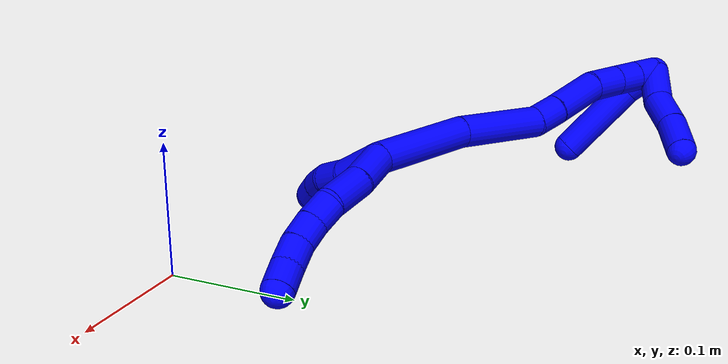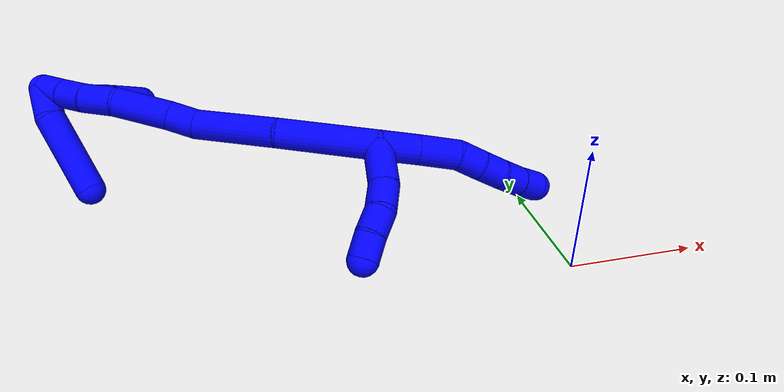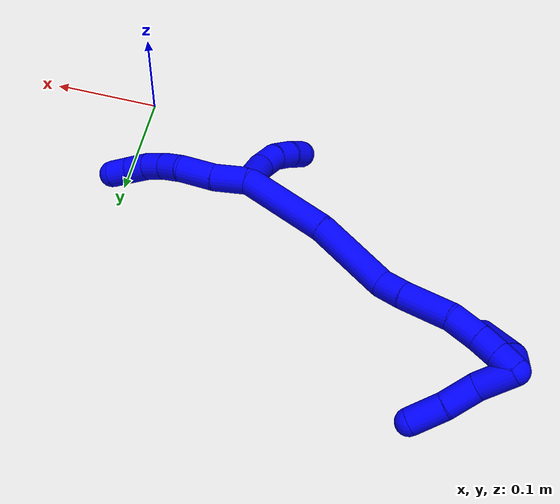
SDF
<sdf version="1.7">
 <world name="default">
  <model name="1">
   <static>0</static>
   <link name="1">
    <collision name="collision-cylinder-e_1_2_8">
     <pose>0.001054 0.001989 -0.016527 -3.02183 0.063254 -0.971163</pose>
     <geometry><cylinder><radius>0.0125</radius><length>0.033359</length></cylinder></geometry>
     <surface>
      <friction><ode><mu>1.16</mu><mu2>1.16</mu2><slip1>0</slip1><slip2>0</slip2></ode></friction>
      <contact><ode><kp>1e+06</kp><kd>1</kd><max_vel>0</max_vel><min_depth>0.001</min_depth></ode></contact>
     </surface>
    </collision>
    <visual name="visual-cylinder-e_1_2_8">
     <pose>0.001054 0.001989 -0.016527 -3.02183 0.063254 -0.971163</pose>
     <geometry><cylinder><radius>0.0125</radius><length>0.033359</length></cylinder></geometry>
     <material><ambient>0 0 1 1</ambient></material>
    </visual>
    <collision name="collision-cylinder-e_2_8_9">
     <pose>0.004544 0.003761 -0.05013 3.12891 0.141656 2.96332</pose>
     <geometry><cylinder><radius>0.0125</radius><length>0.034501</length></cylinder></geometry>
     <surface>
      <friction><ode><mu>1.16</mu><mu2>1.16</mu2><slip1>0</slip1><slip2>0</slip2></ode></friction>
      <contact><ode><kp>1e+06</kp><kd>1</kd><max_vel>0</max_vel><min_depth>0.001</min_depth></ode></contact>
     </surface>
    </collision>
    <visual name="visual-cylinder-e_2_8_9">
     <pose>0.004544 0.003761 -0.05013 3.12891 0.141656 2.96332</pose>
     <geometry><cylinder><radius>0.0125</radius><length>0.034501</length></cylinder></geometry>
     <material><ambient>0 0 1 1</ambient></material>
    </visual>
    <collision name="collision-cylinder-e_3_9_10">
     <pose>0.005627 0.002219 -0.077456 3.01298 -0.130153 -1.58273</pose>
     <geometry><cylinder><radius>0.0125</radius><length>0.020846</length></cylinder></geometry>
     <surface>
      <friction><ode><mu>1.16</mu><mu2>1.16</mu2><slip1>0</slip1><slip2>0</slip2></ode></friction>
      <contact><ode><kp>1e+06</kp><kd>1</kd><max_vel>0</max_vel><min_depth>0.001</min_depth></ode></contact>
     </surface>
    </collision>
    <visual name="visual-cylinder-e_3_9_10">
     <pose>0.005627 0.002219 -0.077456 3.01298 -0.130153 -1.58273</pose>
     <geometry><cylinder><radius>0.0125</radius><length>0.020846</length></cylinder></geometry>
     <material><ambient>0 0 1 1</ambient></material>
    </visual>
    <collision name="collision-cylinder-e_4_10_11">
     <pose>0.002503 0.000718 -0.0976 3.12385 -0.177146 -2.94247</pose>
     <geometry><cylinder><radius>0.0125</radius><length>0.020106</length></cylinder></geometry>
     <surface>
      <friction><ode><mu>1.16</mu><mu2>1.16</mu2><slip1>0</slip1><slip2>0</slip2></ode></friction>
      <contact><ode><kp>1e+06</kp><kd>1</kd><max_vel>0</max_vel><min_depth>0.001</min_depth></ode></contact>
     </surface>
    </collision>
    <visual name="visual-cylinder-e_4_10_11">
     <pose>0.002503 0.000718 -0.0976 3.12385 -0.177146 -2.94247</pose>
     <geometry><cylinder><radius>0.0125</radius><length>0.020106</length></cylinder></geometry>
     <material><ambient>0 0 1 1</ambient></material>
    </visual>
    <collision name="collision-cylinder-e_5_11_12">
     <pose>-0.001835 0.002074 -0.117525 -2.99007 -0.247693 2.04647</pose>
     <geometry><cylinder><radius>0.0125</radius><length>0.020934</length></cylinder></geometry>
     <surface>
      <friction><ode><mu>1.16</mu><mu2>1.16</mu2><slip1>0</slip1><slip2>0</slip2></ode></friction>
      <contact><ode><kp>1e+06</kp><kd>1</kd><max_vel>0</max_vel><min_depth>0.001</min_depth></ode></contact>
     </surface>
    </collision>
    <visual name="visual-cylinder-e_5_11_12">
     <pose>-0.001835 0.002074 -0.117525 -2.99007 -0.247693 2.04647</pose>
     <geometry><cylinder><radius>0.0125</radius><length>0.020934</length></cylinder></geometry>
     <material><ambient>0 0 1 1</ambient></material>
    </visual>
    <collision name="collision-cylinder-e_6_12_6">
     <pose>-0.006467 0.005968 -0.137185 -2.90103 -0.205453 1.41237</pose>
     <geometry><cylinder><radius>0.0125</radius><length>0.020254</length></cylinder></geometry>
     <surface>
      <friction><ode><mu>1.16</mu><mu2>1.16</mu2><slip1>0</slip1><slip2>0</slip2></ode></friction>
      <contact><ode><kp>1e+06</kp><kd>1</kd><max_vel>0</max_vel><min_depth>0.001</min_depth></ode></contact>
     </surface>
    </collision>
    <visual name="visual-cylinder-e_6_12_6">
     <pose>-0.006467 0.005968 -0.137185 -2.90103 -0.205453 1.41237</pose>
     <geometry><cylinder><radius>0.0125</radius><length>0.020254</length></cylinder></geometry>
     <material><ambient>0 0 1 1</ambient></material>
    </visual>
    <collision name="collision-cylinder-e_1_2_13">
     <pose>-0.006095 -0.016119 -0.003517 1.78559 -0.353878 -0.436959</pose>
     <geometry><cylinder><radius>0.0125</radius><length>0.035176</length></cylinder></geometry>
     <surface>
      <friction><ode><mu>1.16</mu><mu2>1.16</mu2><slip1>0</slip1><slip2>0</slip2></ode></friction>
      <contact><ode><kp>1e+06</kp><kd>1</kd><max_vel>0</max_vel><min_depth>0.001</min_depth></ode></contact>
     </surface>
    </collision>
    <visual name="visual-cylinder-e_1_2_13">
     <pose>-0.006095 -0.016119 -0.003517 1.78559 -0.353878 -0.436959</pose>
     <geometry><cylinder><radius>0.0125</radius><length>0.035176</length></cylinder></geometry>
     <material><ambient>0 0 1 1</ambient></material>
    </visual>
    <collision name="collision-cylinder-e_2_13_14">
     <pose>-0.015469 -0.043648 -0.006019 1.48219 -0.278804 -0.255401</pose>
     <geometry><cylinder><radius>0.0125</radius><length>0.023831</length></cylinder></geometry>
     <surface>
      <friction><ode><mu>1.16</mu><mu2>1.16</mu2><slip1>0</slip1><slip2>0</slip2></ode></friction>
      <contact><ode><kp>1e+06</kp><kd>1</kd><max_vel>0</max_vel><min_depth>0.001</min_depth></ode></contact>
     </surface>
    </collision>
    <visual name="visual-cylinder-e_2_13_14">
     <pose>-0.015469 -0.043648 -0.006019 1.48219 -0.278804 -0.255401</pose>
     <geometry><cylinder><radius>0.0125</radius><length>0.023831</length></cylinder></geometry>
     <material><ambient>0 0 1 1</ambient></material>
    </visual>
    <collision name="collision-cylinder-e_3_14_15">
     <pose>-0.024077 -0.063671 -0.002386 1.27553 -0.534516 -0.40039</pose>
     <geometry><cylinder><radius>0.0125</radius><length>0.020921</length></cylinder></geometry>
     <surface>
      <friction><ode><mu>1.16</mu><mu2>1.16</mu2><slip1>0</slip1><slip2>0</slip2></ode></friction>
      <contact><ode><kp>1e+06</kp><kd>1</kd><max_vel>0</max_vel><min_depth>0.001</min_depth></ode></contact>
     </surface>
    </collision>
    <visual name="visual-cylinder-e_3_14_15">
     <pose>-0.024077 -0.063671 -0.002386 1.27553 -0.534516 -0.40039</pose>
     <geometry><cylinder><radius>0.0125</radius><length>0.020921</length></cylinder></geometry>
     <material><ambient>0 0 1 1</ambient></material>
    </visual>
    <collision name="collision-cylinder-e_4_15_5">
     <pose>-0.035709 -0.079985 0.001524 1.40474 -0.679094 -0.580994</pose>
     <geometry><cylinder><radius>0.0125</radius><length>0.020072</length></cylinder></geometry>
     <surface>
      <friction><ode><mu>1.16</mu><mu2>1.16</mu2><slip1>0</slip1><slip2>0</slip2></ode></friction>
      <contact><ode><kp>1e+06</kp><kd>1</kd><max_vel>0</max_vel><min_depth>0.001</min_depth></ode></contact>
     </surface>
    </collision>
    <visual name="visual-cylinder-e_4_15_5">
     <pose>-0.035709 -0.079985 0.001524 1.40474 -0.679094 -0.580994</pose>
     <geometry><cylinder><radius>0.0125</radius><length>0.020072</length></cylinder></geometry>
     <material><ambient>0 0 1 1</ambient></material>
    </visual>
    <collision name="collision-cylinder-e_1_2_16">
     <pose>-0.013073 0.009469 0.038229 -0.242799 -0.320497 0.039433</pose>
     <geometry><cylinder><radius>0.0125</radius><length>0.082994</length></cylinder></geometry>
     <surface>
      <friction><ode><mu>1.16</mu><mu2>1.16</mu2><slip1>0</slip1><slip2>0</slip2></ode></friction>
      <contact><ode><kp>1e+06</kp><kd>1</kd><max_vel>0</max_vel><min_depth>0.001</min_depth></ode></contact>
     </surface>
    </collision>
    <visual name="visual-cylinder-e_1_2_16">
     <pose>-0.013073 0.009469 0.038229 -0.242799 -0.320497 0.039433</pose>
     <geometry><cylinder><radius>0.0125</radius><length>0.082994</length></cylinder></geometry>
     <material><ambient>0 0 1 1</ambient></material>
    </visual>
    <collision name="collision-cylinder-e_2_16_17">
     <pose>-0.041266 0.031727 0.107746 -0.388029 -0.420613 0.083836</pose>
     <geometry><cylinder><radius>0.0125</radius><length>0.074057</length></cylinder></geometry>
     <surface>
      <friction><ode><mu>1.16</mu><mu2>1.16</mu2><slip1>0</slip1><slip2>0</slip2></ode></friction>
      <contact><ode><kp>1e+06</kp><kd>1</kd><max_vel>0</max_vel><min_depth>0.001</min_depth></ode></contact>
     </surface>
    </collision>
    <visual name="visual-cylinder-e_2_16_17">
     <pose>-0.041266 0.031727 0.107746 -0.388029 -0.420613 0.083836</pose>
     <geometry><cylinder><radius>0.0125</radius><length>0.074057</length></cylinder></geometry>
     <material><ambient>0 0 1 1</ambient></material>
    </visual>
    <collision name="collision-cylinder-e_3_17_18">
     <pose>-0.057829 0.047837 0.150565 -0.280471 -0.119683 0.016915</pose>
     <geometry><cylinder><radius>0.0125</radius><length>0.024172</length></cylinder></geometry>
     <surface>
      <friction><ode><mu>1.16</mu><mu2>1.16</mu2><slip1>0</slip1><slip2>0</slip2></ode></friction>
      <contact><ode><kp>1e+06</kp><kd>1</kd><max_vel>0</max_vel><min_depth>0.001</min_depth></ode></contact>
     </surface>
    </collision>
    <visual name="visual-cylinder-e_3_17_18">
     <pose>-0.057829 0.047837 0.150565 -0.280471 -0.119683 0.016915</pose>
     <geometry><cylinder><radius>0.0125</radius><length>0.024172</length></cylinder></geometry>
     <material><ambient>0 0 1 1</ambient></material>
    </visual>
    <collision name="collision-cylinder-e_4_18_19">
     <pose>-0.062316 0.055672 0.185191 -0.192991 -0.128677 0.012473</pose>
     <geometry><cylinder><radius>0.0125</radius><length>0.047457</length></cylinder></geometry>
     <surface>
      <friction><ode><mu>1.16</mu><mu2>1.16</mu2><slip1>0</slip1><slip2>0</slip2></ode></friction>
      <contact><ode><kp>1e+06</kp><kd>1</kd><max_vel>0</max_vel><min_depth>0.001</min_depth></ode></contact>
     </surface>
    </collision>
    <visual name="visual-cylinder-e_4_18_19">
     <pose>-0.062316 0.055672 0.185191 -0.192991 -0.128677 0.012473</pose>
     <geometry><cylinder><radius>0.0125</radius><length>0.047457</length></cylinder></geometry>
     <material><ambient>0 0 1 1</ambient></material>
    </visual>
    <collision name="collision-cylinder-e_5_19_20">
     <pose>-0.070386 0.06426 0.221156 -0.306647 -0.356353 0.055646</pose>
     <geometry><cylinder><radius>0.0125</radius><length>0.028807</length></cylinder></geometry>
     <surface>
      <friction><ode><mu>1.16</mu><mu2>1.16</mu2><slip1>0</slip1><slip2>0</slip2></ode></friction>
      <contact><ode><kp>1e+06</kp><kd>1</kd><max_vel>0</max_vel><min_depth>0.001</min_depth></ode></contact>
     </surface>
    </collision>
    <visual name="visual-cylinder-e_5_19_20">
     <pose>-0.070386 0.06426 0.221156 -0.306647 -0.356353 0.055646</pose>
     <geometry><cylinder><radius>0.0125</radius><length>0.028807</length></cylinder></geometry>
     <material><ambient>0 0 1 1</ambient></material>
    </visual>
    <collision name="collision-cylinder-e_6_20_21">
     <pose>-0.078861 0.072451 0.243388 -0.414074 -0.325317 0.068914</pose>
     <geometry><cylinder><radius>0.0125</radius><length>0.021589</length></cylinder></geometry>
     <surface>
      <friction><ode><mu>1.16</mu><mu2>1.16</mu2><slip1>0</slip1><slip2>0</slip2></ode></friction>
      <contact><ode><kp>1e+06</kp><kd>1</kd><max_vel>0</max_vel><min_depth>0.001</min_depth></ode></contact>
     </surface>
    </collision>
    <visual name="visual-cylinder-e_6_20_21">
     <pose>-0.078861 0.072451 0.243388 -0.414074 -0.325317 0.068914</pose>
     <geometry><cylinder><radius>0.0125</radius><length>0.021589</length></cylinder></geometry>
     <material><ambient>0 0 1 1</ambient></material>
    </visual>
    <collision name="collision-cylinder-e_7_21_1">
     <pose>-0.085613 0.080889 0.261688 -0.450636 -0.321117 0.074208</pose>
     <geometry><cylinder><radius>0.0125</radius><length>0.020923</length></cylinder></geometry>
     <surface>
      <friction><ode><mu>1.16</mu><mu2>1.16</mu2><slip1>0</slip1><slip2>0</slip2></ode></friction>
      <contact><ode><kp>1e+06</kp><kd>1</kd><max_vel>0</max_vel><min_depth>0.001</min_depth></ode></contact>
     </surface>
    </collision>
    <visual name="visual-cylinder-e_7_21_1">
     <pose>-0.085613 0.080889 0.261688 -0.450636 -0.321117 0.074208</pose>
     <geometry><cylinder><radius>0.0125</radius><length>0.020923</length></cylinder></geometry>
     <material><ambient>0 0 1 1</ambient></material>
    </visual>
    <collision name="collision-cylinder-e_1_1_22">
     <pose>-0.09423 0.073656 0.264728 2.04253 -0.388801 -0.622067</pose>
     <geometry><cylinder><radius>0.0125</radius><length>0.02804</length></cylinder></geometry>
     <surface>
      <friction><ode><mu>1.16</mu><mu2>1.16</mu2><slip1>0</slip1><slip2>0</slip2></ode></friction>
      <contact><ode><kp>1e+06</kp><kd>1</kd><max_vel>0</max_vel><min_depth>0.001</min_depth></ode></contact>
     </surface>
    </collision>
    <visual name="visual-cylinder-e_1_1_22">
     <pose>-0.09423 0.073656 0.264728 2.04253 -0.388801 -0.622067</pose>
     <geometry><cylinder><radius>0.0125</radius><length>0.02804</length></cylinder></geometry>
     <material><ambient>0 0 1 1</ambient></material>
    </visual>
    <collision name="collision-cylinder-e_2_22_4">
     <pose>-0.115015 0.039777 0.235234 2.38399 -0.444472 -1.0327</pose>
     <geometry><cylinder><radius>0.0125</radius><length>0.07196</length></cylinder></geometry>
     <surface>
      <friction><ode><mu>1.16</mu><mu2>1.16</mu2><slip1>0</slip1><slip2>0</slip2></ode></friction>
      <contact><ode><kp>1e+06</kp><kd>1</kd><max_vel>0</max_vel><min_depth>0.001</min_depth></ode></contact>
     </surface>
    </collision>
    <visual name="visual-cylinder-e_2_22_4">
     <pose>-0.115015 0.039777 0.235234 2.38399 -0.444472 -1.0327</pose>
     <geometry><cylinder><radius>0.0125</radius><length>0.07196</length></cylinder></geometry>
     <material><ambient>0 0 1 1</ambient></material>
    </visual>
    <collision name="collision-cylinder-e_1_1_23">
     <pose>-0.094733 0.092574 0.255429 -2.69046 -0.331854 1.26089</pose>
     <geometry><cylinder><radius>0.0125</radius><length>0.035717</length></cylinder></geometry>
     <surface>
      <friction><ode><mu>1.16</mu><mu2>1.16</mu2><slip1>0</slip1><slip2>0</slip2></ode></friction>
      <contact><ode><kp>1e+06</kp><kd>1</kd><max_vel>0</max_vel><min_depth>0.001</min_depth></ode></contact>
     </surface>
    </collision>
    <visual name="visual-cylinder-e_1_1_23">
     <pose>-0.094733 0.092574 0.255429 -2.69046 -0.331854 1.26089</pose>
     <geometry><cylinder><radius>0.0125</radius><length>0.035717</length></cylinder></geometry>
     <material><ambient>0 0 1 1</ambient></material>
    </visual>
    <collision name="collision-cylinder-e_2_23_24">
     <pose>-0.104584 0.110147 0.229105 -2.39914 -0.260914 0.650169</pose>
     <geometry><cylinder><radius>0.0125</radius><length>0.031266</length></cylinder></geometry>
     <surface>
      <friction><ode><mu>1.16</mu><mu2>1.16</mu2><slip1>0</slip1><slip2>0</slip2></ode></friction>
      <contact><ode><kp>1e+06</kp><kd>1</kd><max_vel>0</max_vel><min_depth>0.001</min_depth></ode></contact>
     </surface>
    </collision>
    <visual name="visual-cylinder-e_2_23_24">
     <pose>-0.104584 0.110147 0.229105 -2.39914 -0.260914 0.650169</pose>
     <geometry><cylinder><radius>0.0125</radius><length>0.031266</length></cylinder></geometry>
     <material><ambient>0 0 1 1</ambient></material>
    </visual>
    <collision name="collision-cylinder-e_3_24_3">
     <pose>-0.112356 0.129501 0.204749 -2.53681 -0.228441 0.704781</pose>
     <geometry><cylinder><radius>0.0125</radius><length>0.033017</length></cylinder></geometry>
     <surface>
      <friction><ode><mu>1.16</mu><mu2>1.16</mu2><slip1>0</slip1><slip2>0</slip2></ode></friction>
      <contact><ode><kp>1e+06</kp><kd>1</kd><max_vel>0</max_vel><min_depth>0.001</min_depth></ode></contact>
     </surface>
    </collision>
    <visual name="visual-cylinder-e_3_24_3">
     <pose>-0.112356 0.129501 0.204749 -2.53681 -0.228441 0.704781</pose>
     <geometry><cylinder><radius>0.0125</radius><length>0.033017</length></cylinder></geometry>
     <material><ambient>0 0 1 1</ambient></material>
    </visual>
    <collision name="collision-sphere-3">
     <pose>-0.116094 0.138644 0.191522 0 -0 0</pose>
     <geometry><sphere><radius>0.0125</radius></sphere></geometry>
     <surface>
      <friction><ode><mu>1.16</mu><mu2>1.16</mu2><slip1>0</slip1><slip2>0</slip2></ode></friction>
      <contact><ode><kp>1e+06</kp><kd>1</kd><max_vel>0</max_vel><min_depth>0.001</min_depth></ode></contact>
     </surface>
    </collision>
    <visual name="visual-sphere-3">
     <pose>-0.116094 0.138644 0.191522 0 -0 0</pose>
     <geometry><sphere><radius>0.0125</radius></sphere></geometry>
     <material><ambient>0 0 1 1</ambient></material>
    </visual>
    <collision name="collision-sphere-24">
     <pose>-0.108617 0.120359 0.217977 0 -0 0</pose>
     <geometry><sphere><radius>0.0125</radius></sphere></geometry>
     <surface>
      <friction><ode><mu>1.16</mu><mu2>1.16</mu2><slip1>0</slip1><slip2>0</slip2></ode></friction>
      <contact><ode><kp>1e+06</kp><kd>1</kd><max_vel>0</max_vel><min_depth>0.001</min_depth></ode></contact>
     </surface>
    </collision>
    <visual name="visual-sphere-24">
     <pose>-0.108617 0.120359 0.217977 0 -0 0</pose>
     <geometry><sphere><radius>0.0125</radius></sphere></geometry>
     <material><ambient>0 0 1 1</ambient></material>
    </visual>
    <collision name="collision-sphere-23">
     <pose>-0.100552 0.099935 0.240234 0 -0 0</pose>
     <geometry><sphere><radius>0.0125</radius></sphere></geometry>
     <surface>
      <friction><ode><mu>1.16</mu><mu2>1.16</mu2><slip1>0</slip1><slip2>0</slip2></ode></friction>
      <contact><ode><kp>1e+06</kp><kd>1</kd><max_vel>0</max_vel><min_depth>0.001</min_depth></ode></contact>
     </surface>
    </collision>
    <visual name="visual-sphere-23">
     <pose>-0.100552 0.099935 0.240234 0 -0 0</pose>
     <geometry><sphere><radius>0.0125</radius></sphere></geometry>
     <material><ambient>0 0 1 1</ambient></material>
    </visual>
    <collision name="collision-sphere-4">
     <pose>-0.130486 0.017454 0.211635 0 -0 0</pose>
     <geometry><sphere><radius>0.0125</radius></sphere></geometry>
     <surface>
      <friction><ode><mu>1.16</mu><mu2>1.16</mu2><slip1>0</slip1><slip2>0</slip2></ode></friction>
      <contact><ode><kp>1e+06</kp><kd>1</kd><max_vel>0</max_vel><min_depth>0.001</min_depth></ode></contact>
     </surface>
    </collision>
    <visual name="visual-sphere-4">
     <pose>-0.130486 0.017454 0.211635 0 -0 0</pose>
     <geometry><sphere><radius>0.0125</radius></sphere></geometry>
     <material><ambient>0 0 1 1</ambient></material>
    </visual>
    <collision name="collision-sphere-22">
     <pose>-0.099545 0.062099 0.258833 0 -0 0</pose>
     <geometry><sphere><radius>0.0125</radius></sphere></geometry>
     <surface>
      <friction><ode><mu>1.16</mu><mu2>1.16</mu2><slip1>0</slip1><slip2>0</slip2></ode></friction>
      <contact><ode><kp>1e+06</kp><kd>1</kd><max_vel>0</max_vel><min_depth>0.001</min_depth></ode></contact>
     </surface>
    </collision>
    <visual name="visual-sphere-22">
     <pose>-0.099545 0.062099 0.258833 0 -0 0</pose>
     <geometry><sphere><radius>0.0125</radius></sphere></geometry>
     <material><ambient>0 0 1 1</ambient></material>
    </visual>
    <collision name="collision-sphere-1">
     <pose>-0.088915 0.085213 0.270624 0 -0 0</pose>
     <geometry><sphere><radius>0.0125</radius></sphere></geometry>
     <surface>
      <friction><ode><mu>1.16</mu><mu2>1.16</mu2><slip1>0</slip1><slip2>0</slip2></ode></friction>
      <contact><ode><kp>1e+06</kp><kd>1</kd><max_vel>0</max_vel><min_depth>0.001</min_depth></ode></contact>
     </surface>
    </collision>
    <visual name="visual-sphere-1">
     <pose>-0.088915 0.085213 0.270624 0 -0 0</pose>
     <geometry><sphere><radius>0.0125</radius></sphere></geometry>
     <material><ambient>0 0 1 1</ambient></material>
    </visual>
    <collision name="collision-sphere-21">
     <pose>-0.082311 0.076566 0.252752 0 -0 0</pose>
     <geometry><sphere><radius>0.0125</radius></sphere></geometry>
     <surface>
      <friction><ode><mu>1.16</mu><mu2>1.16</mu2><slip1>0</slip1><slip2>0</slip2></ode></friction>
      <contact><ode><kp>1e+06</kp><kd>1</kd><max_vel>0</max_vel><min_depth>0.001</min_depth></ode></contact>
     </surface>
    </collision>
    <visual name="visual-sphere-21">
     <pose>-0.082311 0.076566 0.252752 0 -0 0</pose>
     <geometry><sphere><radius>0.0125</radius></sphere></geometry>
     <material><ambient>0 0 1 1</ambient></material>
    </visual>
    <collision name="collision-sphere-12">
     <pose>-0.004401 0.003605 -0.127556 0 -0 0</pose>
     <geometry><sphere><radius>0.0125</radius></sphere></geometry>
     <surface>
      <friction><ode><mu>1.16</mu><mu2>1.16</mu2><slip1>0</slip1><slip2>0</slip2></ode></friction>
      <contact><ode><kp>1e+06</kp><kd>1</kd><max_vel>0</max_vel><min_depth>0.001</min_depth></ode></contact>
     </surface>
    </collision>
    <visual name="visual-sphere-12">
     <pose>-0.004401 0.003605 -0.127556 0 -0 0</pose>
     <geometry><sphere><radius>0.0125</radius></sphere></geometry>
     <material><ambient>0 0 1 1</ambient></material>
    </visual>
    <collision name="collision-sphere-11">
     <pose>0.000731 0.000542 -0.107494 0 -0 0</pose>
     <geometry><sphere><radius>0.0125</radius></sphere></geometry>
     <surface>
      <friction><ode><mu>1.16</mu><mu2>1.16</mu2><slip1>0</slip1><slip2>0</slip2></ode></friction>
      <contact><ode><kp>1e+06</kp><kd>1</kd><max_vel>0</max_vel><min_depth>0.001</min_depth></ode></contact>
     </surface>
    </collision>
    <visual name="visual-sphere-11">
     <pose>0.000731 0.000542 -0.107494 0 -0 0</pose>
     <geometry><sphere><radius>0.0125</radius></sphere></geometry>
     <material><ambient>0 0 1 1</ambient></material>
    </visual>
    <collision name="collision-sphere-10">
     <pose>0.004274 0.000893 -0.087706 0 -0 0</pose>
     <geometry><sphere><radius>0.0125</radius></sphere></geometry>
     <surface>
      <friction><ode><mu>1.16</mu><mu2>1.16</mu2><slip1>0</slip1><slip2>0</slip2></ode></friction>
      <contact><ode><kp>1e+06</kp><kd>1</kd><max_vel>0</max_vel><min_depth>0.001</min_depth></ode></contact>
     </surface>
    </collision>
    <visual name="visual-sphere-10">
     <pose>0.004274 0.000893 -0.087706 0 -0 0</pose>
     <geometry><sphere><radius>0.0125</radius></sphere></geometry>
     <material><ambient>0 0 1 1</ambient></material>
    </visual>
    <collision name="collision-sphere-9">
     <pose>0.00698 0.003544 -0.067207 0 -0 0</pose>
     <geometry><sphere><radius>0.0125</radius></sphere></geometry>
     <surface>
      <friction><ode><mu>1.16</mu><mu2>1.16</mu2><slip1>0</slip1><slip2>0</slip2></ode></friction>
      <contact><ode><kp>1e+06</kp><kd>1</kd><max_vel>0</max_vel><min_depth>0.001</min_depth></ode></contact>
     </surface>
    </collision>
    <visual name="visual-sphere-9">
     <pose>0.00698 0.003544 -0.067207 0 -0 0</pose>
     <geometry><sphere><radius>0.0125</radius></sphere></geometry>
     <material><ambient>0 0 1 1</ambient></material>
    </visual>
    <collision name="collision-sphere-2">
     <geometry><sphere><radius>0.0125</radius></sphere></geometry>
     <surface>
      <friction><ode><mu>1.16</mu><mu2>1.16</mu2><slip1>0</slip1><slip2>0</slip2></ode></friction>
      <contact><ode><kp>1e+06</kp><kd>1</kd><max_vel>0</max_vel><min_depth>0.001</min_depth></ode></contact>
     </surface>
    </collision>
    <visual name="visual-sphere-2">
     <geometry><sphere><radius>0.0125</radius></sphere></geometry>
     <material><ambient>0 0 1 1</ambient></material>
    </visual>
    <collision name="collision-sphere-19">
     <pose>-0.065361 0.060186 0.208287 0 -0 0</pose>
     <geometry><sphere><radius>0.0125</radius></sphere></geometry>
     <surface>
      <friction><ode><mu>1.16</mu><mu2>1.16</mu2><slip1>0</slip1><slip2>0</slip2></ode></friction>
      <contact><ode><kp>1e+06</kp><kd>1</kd><max_vel>0</max_vel><min_depth>0.001</min_depth></ode></contact>
     </surface>
    </collision>
    <visual name="visual-sphere-19">
     <pose>-0.065361 0.060186 0.208287 0 -0 0</pose>
     <geometry><sphere><radius>0.0125</radius></sphere></geometry>
     <material><ambient>0 0 1 1</ambient></material>
    </visual>
    <collision name="collision-sphere-8">
     <pose>0.002109 0.003978 -0.033054 0 -0 0</pose>
     <geometry><sphere><radius>0.0125</radius></sphere></geometry>
     <surface>
      <friction><ode><mu>1.16</mu><mu2>1.16</mu2><slip1>0</slip1><slip2>0</slip2></ode></friction>
      <contact><ode><kp>1e+06</kp><kd>1</kd><max_vel>0</max_vel><min_depth>0.001</min_depth></ode></contact>
     </surface>
    </collision>
    <visual name="visual-sphere-8">
     <pose>0.002109 0.003978 -0.033054 0 -0 0</pose>
     <geometry><sphere><radius>0.0125</radius></sphere></geometry>
     <material><ambient>0 0 1 1</ambient></material>
    </visual>
    <collision name="collision-sphere-6">
     <pose>-0.008533 0.00833 -0.146813 0 -0 0</pose>
     <geometry><sphere><radius>0.0125</radius></sphere></geometry>
     <surface>
      <friction><ode><mu>1.16</mu><mu2>1.16</mu2><slip1>0</slip1><slip2>0</slip2></ode></friction>
      <contact><ode><kp>1e+06</kp><kd>1</kd><max_vel>0</max_vel><min_depth>0.001</min_depth></ode></contact>
     </surface>
    </collision>
    <visual name="visual-sphere-6">
     <pose>-0.008533 0.00833 -0.146813 0 -0 0</pose>
     <geometry><sphere><radius>0.0125</radius></sphere></geometry>
     <material><ambient>0 0 1 1</ambient></material>
    </visual>
    <collision name="collision-sphere-13">
     <pose>-0.01219 -0.032238 -0.007033 0 -0 0</pose>
     <geometry><sphere><radius>0.0125</radius></sphere></geometry>
     <surface>
      <friction><ode><mu>1.16</mu><mu2>1.16</mu2><slip1>0</slip1><slip2>0</slip2></ode></friction>
      <contact><ode><kp>1e+06</kp><kd>1</kd><max_vel>0</max_vel><min_depth>0.001</min_depth></ode></contact>
     </surface>
    </collision>
    <visual name="visual-sphere-13">
     <pose>-0.01219 -0.032238 -0.007033 0 -0 0</pose>
     <geometry><sphere><radius>0.0125</radius></sphere></geometry>
     <material><ambient>0 0 1 1</ambient></material>
    </visual>
    <collision name="collision-sphere-14">
     <pose>-0.018748 -0.055059 -0.005006 0 -0 0</pose>
     <geometry><sphere><radius>0.0125</radius></sphere></geometry>
     <surface>
      <friction><ode><mu>1.16</mu><mu2>1.16</mu2><slip1>0</slip1><slip2>0</slip2></ode></friction>
      <contact><ode><kp>1e+06</kp><kd>1</kd><max_vel>0</max_vel><min_depth>0.001</min_depth></ode></contact>
     </surface>
    </collision>
    <visual name="visual-sphere-14">
     <pose>-0.018748 -0.055059 -0.005006 0 -0 0</pose>
     <geometry><sphere><radius>0.0125</radius></sphere></geometry>
     <material><ambient>0 0 1 1</ambient></material>
    </visual>
    <collision name="collision-sphere-15">
     <pose>-0.029406 -0.072283 0.000233 0 -0 0</pose>
     <geometry><sphere><radius>0.0125</radius></sphere></geometry>
     <surface>
      <friction><ode><mu>1.16</mu><mu2>1.16</mu2><slip1>0</slip1><slip2>0</slip2></ode></friction>
      <contact><ode><kp>1e+06</kp><kd>1</kd><max_vel>0</max_vel><min_depth>0.001</min_depth></ode></contact>
     </surface>
    </collision>
    <visual name="visual-sphere-15">
     <pose>-0.029406 -0.072283 0.000233 0 -0 0</pose>
     <geometry><sphere><radius>0.0125</radius></sphere></geometry>
     <material><ambient>0 0 1 1</ambient></material>
    </visual>
    <collision name="collision-sphere-5">
     <pose>-0.042013 -0.087687 0.002815 0 -0 0</pose>
     <geometry><sphere><radius>0.0125</radius></sphere></geometry>
     <surface>
      <friction><ode><mu>1.16</mu><mu2>1.16</mu2><slip1>0</slip1><slip2>0</slip2></ode></friction>
      <contact><ode><kp>1e+06</kp><kd>1</kd><max_vel>0</max_vel><min_depth>0.001</min_depth></ode></contact>
     </surface>
    </collision>
    <visual name="visual-sphere-5">
     <pose>-0.042013 -0.087687 0.002815 0 -0 0</pose>
     <geometry><sphere><radius>0.0125</radius></sphere></geometry>
     <material><ambient>0 0 1 1</ambient></material>
    </visual>
    <collision name="collision-sphere-16">
     <pose>-0.026146 0.018937 0.076458 0 -0 0</pose>
     <geometry><sphere><radius>0.0125</radius></sphere></geometry>
     <surface>
      <friction><ode><mu>1.16</mu><mu2>1.16</mu2><slip1>0</slip1><slip2>0</slip2></ode></friction>
      <contact><ode><kp>1e+06</kp><kd>1</kd><max_vel>0</max_vel><min_depth>0.001</min_depth></ode></contact>
     </surface>
    </collision>
    <visual name="visual-sphere-16">
     <pose>-0.026146 0.018937 0.076458 0 -0 0</pose>
     <geometry><sphere><radius>0.0125</radius></sphere></geometry>
     <material><ambient>0 0 1 1</ambient></material>
    </visual>
    <collision name="collision-sphere-17">
     <pose>-0.056386 0.044516 0.139034 0 -0 0</pose>
     <geometry><sphere><radius>0.0125</radius></sphere></geometry>
     <surface>
      <friction><ode><mu>1.16</mu><mu2>1.16</mu2><slip1>0</slip1><slip2>0</slip2></ode></friction>
      <contact><ode><kp>1e+06</kp><kd>1</kd><max_vel>0</max_vel><min_depth>0.001</min_depth></ode></contact>
     </surface>
    </collision>
    <visual name="visual-sphere-17">
     <pose>-0.056386 0.044516 0.139034 0 -0 0</pose>
     <geometry><sphere><radius>0.0125</radius></sphere></geometry>
     <material><ambient>0 0 1 1</ambient></material>
    </visual>
    <collision name="collision-sphere-18">
     <pose>-0.059272 0.051159 0.162096 0 -0 0</pose>
     <geometry><sphere><radius>0.0125</radius></sphere></geometry>
     <surface>
      <friction><ode><mu>1.16</mu><mu2>1.16</mu2><slip1>0</slip1><slip2>0</slip2></ode></friction>
      <contact><ode><kp>1e+06</kp><kd>1</kd><max_vel>0</max_vel><min_depth>0.001</min_depth></ode></contact>
     </surface>
    </collision>
    <visual name="visual-sphere-18">
     <pose>-0.059272 0.051159 0.162096 0 -0 0</pose>
     <geometry><sphere><radius>0.0125</radius></sphere></geometry>
     <material><ambient>0 0 1 1</ambient></material>
    </visual>
    <collision name="collision-sphere-20">
     <pose>-0.075411 0.068335 0.234025 0 -0 0</pose>
     <geometry><sphere><radius>0.0125</radius></sphere></geometry>
     <surface>
      <friction><ode><mu>1.16</mu><mu2>1.16</mu2><slip1>0</slip1><slip2>0</slip2></ode></friction>
      <contact><ode><kp>1e+06</kp><kd>1</kd><max_vel>0</max_vel><min_depth>0.001</min_depth></ode></contact>
     </surface>
    </collision>
    <visual name="visual-sphere-20">
     <pose>-0.075411 0.068335 0.234025 0 -0 0</pose>
     <geometry><sphere><radius>0.0125</radius></sphere></geometry>
     <material><ambient>0 0 1 1</ambient></material>
    </visual>
    <inertial>
     <pose>-0.049217 0.031829 0.10226 0 -0 0</pose>
     <mass>0.75</mass>
     <inertia><ixx>9.5e-05</ixx><ixy>0</ixy><ixz>0</ixz><iyy>8e-05</iyy><iyz>0</iyz><izz>5.3e-05</izz></inertia>
    </inertial>
   </link>
   <pose>-0.124796 0.103951 0.064303 0.464709 -1.21168 -0.629691</pose>
  </model>
 </world>
</sdf>
